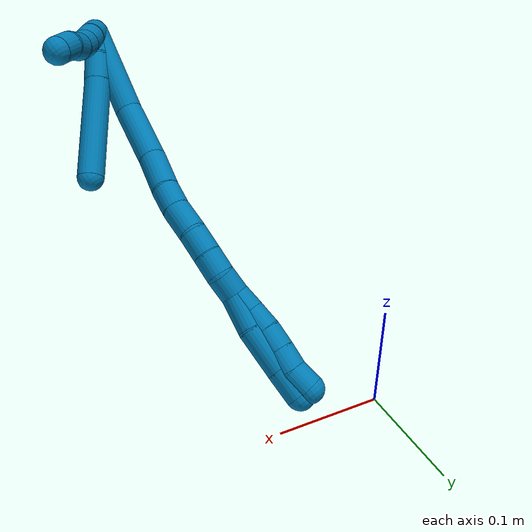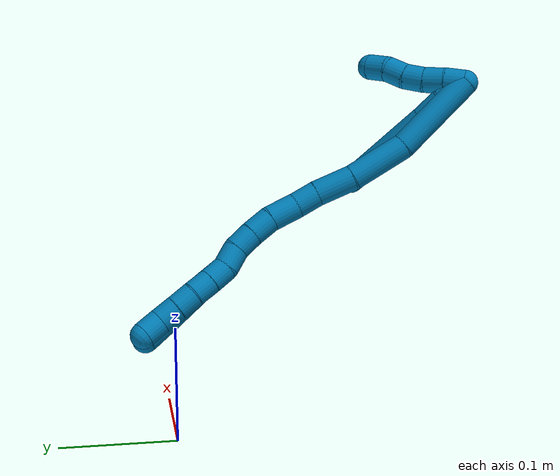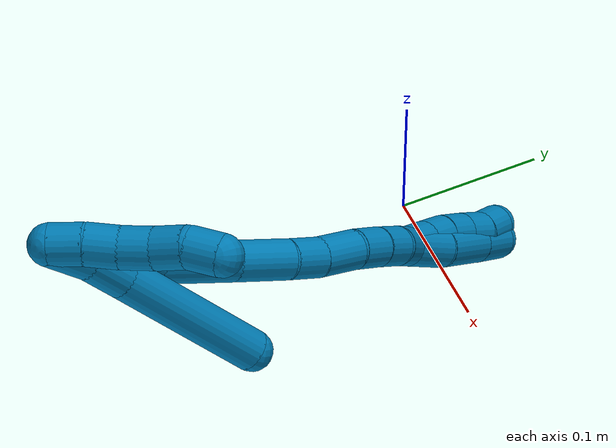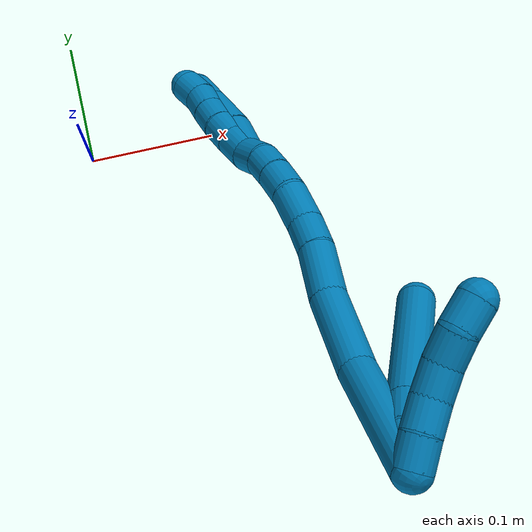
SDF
<sdf version="1.7">
 <world name="default">
  <model name="9">
   <static>0</static>
   <link name="9">
    <collision name="collision-cylinder-e_1_2_8">
     <pose>0.004876 0.005033 -0.011996 -2.74436 0.358637 -1.46631</pose>
     <geometry><cylinder><radius>0.0125</radius><length>0.027786</length></cylinder></geometry>
     <surface>
      <friction><ode><mu>1.16</mu><mu2>1.16</mu2><slip1>0</slip1><slip2>0</slip2></ode></friction>
      <contact><ode><kp>1e+06</kp><kd>1</kd><max_vel>0</max_vel><min_depth>0.001</min_depth></ode></contact>
     </surface>
    </collision>
    <visual name="visual-cylinder-e_1_2_8">
     <pose>0.004876 0.005033 -0.011996 -2.74436 0.358637 -1.46631</pose>
     <geometry><cylinder><radius>0.0125</radius><length>0.027786</length></cylinder></geometry>
     <material><ambient>0 0.490196 0.709804 1</ambient></material>
    </visual>
    <collision name="collision-cylinder-e_2_8_9">
     <pose>0.015903 0.01406 -0.034401 -2.77515 0.504121 -1.89419</pose>
     <geometry><cylinder><radius>0.0125</radius><length>0.025466</length></cylinder></geometry>
     <surface>
      <friction><ode><mu>1.16</mu><mu2>1.16</mu2><slip1>0</slip1><slip2>0</slip2></ode></friction>
      <contact><ode><kp>1e+06</kp><kd>1</kd><max_vel>0</max_vel><min_depth>0.001</min_depth></ode></contact>
     </surface>
    </collision>
    <visual name="visual-cylinder-e_2_8_9">
     <pose>0.015903 0.01406 -0.034401 -2.77515 0.504121 -1.89419</pose>
     <geometry><cylinder><radius>0.0125</radius><length>0.025466</length></cylinder></geometry>
     <material><ambient>0 0.490196 0.709804 1</ambient></material>
    </visual>
    <collision name="collision-cylinder-e_3_9_6">
     <pose>0.046451 0.035827 -0.082612 -2.70211 0.528613 -1.76168</pose>
     <geometry><cylinder><radius>0.0125</radius><length>0.096748</length></cylinder></geometry>
     <surface>
      <friction><ode><mu>1.16</mu><mu2>1.16</mu2><slip1>0</slip1><slip2>0</slip2></ode></friction>
      <contact><ode><kp>1e+06</kp><kd>1</kd><max_vel>0</max_vel><min_depth>0.001</min_depth></ode></contact>
     </surface>
    </collision>
    <visual name="visual-cylinder-e_3_9_6">
     <pose>0.046451 0.035827 -0.082612 -2.70211 0.528613 -1.76168</pose>
     <geometry><cylinder><radius>0.0125</radius><length>0.096748</length></cylinder></geometry>
     <material><ambient>0 0.490196 0.709804 1</ambient></material>
    </visual>
    <collision name="collision-cylinder-e_1_2_10">
     <pose>0.000433 0.009156 -0.003997 -1.98235 0.043355 -0.066215</pose>
     <geometry><cylinder><radius>0.0125</radius><length>0.02</length></cylinder></geometry>
     <surface>
      <friction><ode><mu>1.16</mu><mu2>1.16</mu2><slip1>0</slip1><slip2>0</slip2></ode></friction>
      <contact><ode><kp>1e+06</kp><kd>1</kd><max_vel>0</max_vel><min_depth>0.001</min_depth></ode></contact>
     </surface>
    </collision>
    <visual name="visual-cylinder-e_1_2_10">
     <pose>0.000433 0.009156 -0.003997 -1.98235 0.043355 -0.066215</pose>
     <geometry><cylinder><radius>0.0125</radius><length>0.02</length></cylinder></geometry>
     <material><ambient>0 0.490196 0.709804 1</ambient></material>
    </visual>
    <collision name="collision-cylinder-e_2_10_11">
     <pose>0.002413 0.02716 -0.012391 -2.03209 0.155288 -0.249799</pose>
     <geometry><cylinder><radius>0.0125</radius><length>0.02</length></cylinder></geometry>
     <surface>
      <friction><ode><mu>1.16</mu><mu2>1.16</mu2><slip1>0</slip1><slip2>0</slip2></ode></friction>
      <contact><ode><kp>1e+06</kp><kd>1</kd><max_vel>0</max_vel><min_depth>0.001</min_depth></ode></contact>
     </surface>
    </collision>
    <visual name="visual-cylinder-e_2_10_11">
     <pose>0.002413 0.02716 -0.012391 -2.03209 0.155288 -0.249799</pose>
     <geometry><cylinder><radius>0.0125</radius><length>0.02</length></cylinder></geometry>
     <material><ambient>0 0.490196 0.709804 1</ambient></material>
    </visual>
    <collision name="collision-cylinder-e_3_11_12">
     <pose>0.00475 0.045468 -0.019929 -1.89137 0.079035 -0.109467</pose>
     <geometry><cylinder><radius>0.0125</radius><length>0.02</length></cylinder></geometry>
     <surface>
      <friction><ode><mu>1.16</mu><mu2>1.16</mu2><slip1>0</slip1><slip2>0</slip2></ode></friction>
      <contact><ode><kp>1e+06</kp><kd>1</kd><max_vel>0</max_vel><min_depth>0.001</min_depth></ode></contact>
     </surface>
    </collision>
    <visual name="visual-cylinder-e_3_11_12">
     <pose>0.00475 0.045468 -0.019929 -1.89137 0.079035 -0.109467</pose>
     <geometry><cylinder><radius>0.0125</radius><length>0.02</length></cylinder></geometry>
     <material><ambient>0 0.490196 0.709804 1</ambient></material>
    </visual>
    <collision name="collision-cylinder-e_4_12_13">
     <pose>0.005598 0.064858 -0.024258 -1.68979 0.005927 -0.006678</pose>
     <geometry><cylinder><radius>0.0125</radius><length>0.02</length></cylinder></geometry>
     <surface>
      <friction><ode><mu>1.16</mu><mu2>1.16</mu2><slip1>0</slip1><slip2>0</slip2></ode></friction>
      <contact><ode><kp>1e+06</kp><kd>1</kd><max_vel>0</max_vel><min_depth>0.001</min_depth></ode></contact>
     </surface>
    </collision>
    <visual name="visual-cylinder-e_4_12_13">
     <pose>0.005598 0.064858 -0.024258 -1.68979 0.005927 -0.006678</pose>
     <geometry><cylinder><radius>0.0125</radius><length>0.02</length></cylinder></geometry>
     <material><ambient>0 0.490196 0.709804 1</ambient></material>
    </visual>
    <collision name="collision-cylinder-e_5_13_5">
     <pose>0.008459 0.084113 -0.02772 -1.81002 0.283923 -0.36</pose>
     <geometry><cylinder><radius>0.0125</radius><length>0.02</length></cylinder></geometry>
     <surface>
      <friction><ode><mu>1.16</mu><mu2>1.16</mu2><slip1>0</slip1><slip2>0</slip2></ode></friction>
      <contact><ode><kp>1e+06</kp><kd>1</kd><max_vel>0</max_vel><min_depth>0.001</min_depth></ode></contact>
     </surface>
    </collision>
    <visual name="visual-cylinder-e_5_13_5">
     <pose>0.008459 0.084113 -0.02772 -1.81002 0.283923 -0.36</pose>
     <geometry><cylinder><radius>0.0125</radius><length>0.02</length></cylinder></geometry>
     <material><ambient>0 0.490196 0.709804 1</ambient></material>
    </visual>
    <collision name="collision-cylinder-e_1_2_14">
     <pose>0.008056 0.006408 -0.042284 -2.9912 0.1862 -1.78374</pose>
     <geometry><cylinder><radius>0.0125</radius><length>0.087037</length></cylinder></geometry>
     <surface>
      <friction><ode><mu>1.16</mu><mu2>1.16</mu2><slip1>0</slip1><slip2>0</slip2></ode></friction>
      <contact><ode><kp>1e+06</kp><kd>1</kd><max_vel>0</max_vel><min_depth>0.001</min_depth></ode></contact>
     </surface>
    </collision>
    <visual name="visual-cylinder-e_1_2_14">
     <pose>0.008056 0.006408 -0.042284 -2.9912 0.1862 -1.78374</pose>
     <geometry><cylinder><radius>0.0125</radius><length>0.087037</length></cylinder></geometry>
     <material><ambient>0 0.490196 0.709804 1</ambient></material>
    </visual>
    <collision name="collision-cylinder-e_2_14_15">
     <pose>0.017753 0.022764 -0.111822 -2.79161 0.056484 -0.316886</pose>
     <geometry><cylinder><radius>0.0125</radius><length>0.058121</length></cylinder></geometry>
     <surface>
      <friction><ode><mu>1.16</mu><mu2>1.16</mu2><slip1>0</slip1><slip2>0</slip2></ode></friction>
      <contact><ode><kp>1e+06</kp><kd>1</kd><max_vel>0</max_vel><min_depth>0.001</min_depth></ode></contact>
     </surface>
    </collision>
    <visual name="visual-cylinder-e_2_14_15">
     <pose>0.017753 0.022764 -0.111822 -2.79161 0.056484 -0.316886</pose>
     <geometry><cylinder><radius>0.0125</radius><length>0.058121</length></cylinder></geometry>
     <material><ambient>0 0.490196 0.709804 1</ambient></material>
    </visual>
    <collision name="collision-cylinder-e_3_15_16">
     <pose>0.020249 0.041828 -0.155689 -2.63969 0.045071 -0.175391</pose>
     <geometry><cylinder><radius>0.0125</radius><length>0.037936</length></cylinder></geometry>
     <surface>
      <friction><ode><mu>1.16</mu><mu2>1.16</mu2><slip1>0</slip1><slip2>0</slip2></ode></friction>
      <contact><ode><kp>1e+06</kp><kd>1</kd><max_vel>0</max_vel><min_depth>0.001</min_depth></ode></contact>
     </surface>
    </collision>
    <visual name="visual-cylinder-e_3_15_16">
     <pose>0.020249 0.041828 -0.155689 -2.63969 0.045071 -0.175391</pose>
     <geometry><cylinder><radius>0.0125</radius><length>0.037936</length></cylinder></geometry>
     <material><ambient>0 0.490196 0.709804 1</ambient></material>
    </visual>
    <collision name="collision-cylinder-e_4_16_17">
     <pose>0.021356 0.055029 -0.183085 -2.77954 0.021944 -0.119755</pose>
     <geometry><cylinder><radius>0.0125</radius><length>0.02307</length></cylinder></geometry>
     <surface>
      <friction><ode><mu>1.16</mu><mu2>1.16</mu2><slip1>0</slip1><slip2>0</slip2></ode></friction>
      <contact><ode><kp>1e+06</kp><kd>1</kd><max_vel>0</max_vel><min_depth>0.001</min_depth></ode></contact>
     </surface>
    </collision>
    <visual name="visual-cylinder-e_4_16_17">
     <pose>0.021356 0.055029 -0.183085 -2.77954 0.021944 -0.119755</pose>
     <geometry><cylinder><radius>0.0125</radius><length>0.02307</length></cylinder></geometry>
     <material><ambient>0 0.490196 0.709804 1</ambient></material>
    </visual>
    <collision name="collision-cylinder-e_5_17_18">
     <pose>0.020238 0.064121 -0.207212 -2.78253 -0.095943 0.517213</pose>
     <geometry><cylinder><radius>0.0125</radius><length>0.028633</length></cylinder></geometry>
     <surface>
      <friction><ode><mu>1.16</mu><mu2>1.16</mu2><slip1>0</slip1><slip2>0</slip2></ode></friction>
      <contact><ode><kp>1e+06</kp><kd>1</kd><max_vel>0</max_vel><min_depth>0.001</min_depth></ode></contact>
     </surface>
    </collision>
    <visual name="visual-cylinder-e_5_17_18">
     <pose>0.020238 0.064121 -0.207212 -2.78253 -0.095943 0.517213</pose>
     <geometry><cylinder><radius>0.0125</radius><length>0.028633</length></cylinder></geometry>
     <material><ambient>0 0.490196 0.709804 1</ambient></material>
    </visual>
    <collision name="collision-cylinder-e_6_18_19">
     <pose>0.01887 0.071135 -0.231826 -2.9655 0.000285 -0.003224</pose>
     <geometry><cylinder><radius>0.0125</radius><length>0.022899</length></cylinder></geometry>
     <surface>
      <friction><ode><mu>1.16</mu><mu2>1.16</mu2><slip1>0</slip1><slip2>0</slip2></ode></friction>
      <contact><ode><kp>1e+06</kp><kd>1</kd><max_vel>0</max_vel><min_depth>0.001</min_depth></ode></contact>
     </surface>
    </collision>
    <visual name="visual-cylinder-e_6_18_19">
     <pose>0.01887 0.071135 -0.231826 -2.9655 0.000285 -0.003224</pose>
     <geometry><cylinder><radius>0.0125</radius><length>0.022899</length></cylinder></geometry>
     <material><ambient>0 0.490196 0.709804 1</ambient></material>
    </visual>
    <collision name="collision-cylinder-e_7_19_20">
     <pose>0.019236 0.074186 -0.253576 -3.04216 0.034464 -0.666816</pose>
     <geometry><cylinder><radius>0.0125</radius><length>0.021071</length></cylinder></geometry>
     <surface>
      <friction><ode><mu>1.16</mu><mu2>1.16</mu2><slip1>0</slip1><slip2>0</slip2></ode></friction>
      <contact><ode><kp>1e+06</kp><kd>1</kd><max_vel>0</max_vel><min_depth>0.001</min_depth></ode></contact>
     </surface>
    </collision>
    <visual name="visual-cylinder-e_7_19_20">
     <pose>0.019236 0.074186 -0.253576 -3.04216 0.034464 -0.666816</pose>
     <geometry><cylinder><radius>0.0125</radius><length>0.021071</length></cylinder></geometry>
     <material><ambient>0 0.490196 0.709804 1</ambient></material>
    </visual>
    <collision name="collision-cylinder-e_8_20_1">
     <pose>0.020289 0.073187 -0.274448 2.94742 0.065012 0.644483</pose>
     <geometry><cylinder><radius>0.0125</radius><length>0.021233</length></cylinder></geometry>
     <surface>
      <friction><ode><mu>1.16</mu><mu2>1.16</mu2><slip1>0</slip1><slip2>0</slip2></ode></friction>
      <contact><ode><kp>1e+06</kp><kd>1</kd><max_vel>0</max_vel><min_depth>0.001</min_depth></ode></contact>
     </surface>
    </collision>
    <visual name="visual-cylinder-e_8_20_1">
     <pose>0.020289 0.073187 -0.274448 2.94742 0.065012 0.644483</pose>
     <geometry><cylinder><radius>0.0125</radius><length>0.021233</length></cylinder></geometry>
     <material><ambient>0 0.490196 0.709804 1</ambient></material>
    </visual>
    <collision name="collision-cylinder-e_1_1_21">
     <pose>0.019751 0.072077 -0.294724 -3.04736 -0.123073 1.83519</pose>
     <geometry><cylinder><radius>0.0125</radius><length>0.02</length></cylinder></geometry>
     <surface>
      <friction><ode><mu>1.16</mu><mu2>1.16</mu2><slip1>0</slip1><slip2>0</slip2></ode></friction>
      <contact><ode><kp>1e+06</kp><kd>1</kd><max_vel>0</max_vel><min_depth>0.001</min_depth></ode></contact>
     </surface>
    </collision>
    <visual name="visual-cylinder-e_1_1_21">
     <pose>0.019751 0.072077 -0.294724 -3.04736 -0.123073 1.83519</pose>
     <geometry><cylinder><radius>0.0125</radius><length>0.02</length></cylinder></geometry>
     <material><ambient>0 0.490196 0.709804 1</ambient></material>
    </visual>
    <collision name="collision-cylinder-e_2_21_22">
     <pose>0.017298 0.074377 -0.314434 -3.00348 -0.12283 1.45345</pose>
     <geometry><cylinder><radius>0.0125</radius><length>0.02</length></cylinder></geometry>
     <surface>
      <friction><ode><mu>1.16</mu><mu2>1.16</mu2><slip1>0</slip1><slip2>0</slip2></ode></friction>
      <contact><ode><kp>1e+06</kp><kd>1</kd><max_vel>0</max_vel><min_depth>0.001</min_depth></ode></contact>
     </surface>
    </collision>
    <visual name="visual-cylinder-e_2_21_22">
     <pose>0.017298 0.074377 -0.314434 -3.00348 -0.12283 1.45345</pose>
     <geometry><cylinder><radius>0.0125</radius><length>0.02</length></cylinder></geometry>
     <material><ambient>0 0.490196 0.709804 1</ambient></material>
    </visual>
    <collision name="collision-cylinder-e_3_22_23">
     <pose>0.015993 0.077399 -0.334126 -2.9752 -0.008012 0.096003</pose>
     <geometry><cylinder><radius>0.0125</radius><length>0.02</length></cylinder></geometry>
     <surface>
      <friction><ode><mu>1.16</mu><mu2>1.16</mu2><slip1>0</slip1><slip2>0</slip2></ode></friction>
      <contact><ode><kp>1e+06</kp><kd>1</kd><max_vel>0</max_vel><min_depth>0.001</min_depth></ode></contact>
     </surface>
    </collision>
    <visual name="visual-cylinder-e_3_22_23">
     <pose>0.015993 0.077399 -0.334126 -2.9752 -0.008012 0.096003</pose>
     <geometry><cylinder><radius>0.0125</radius><length>0.02</length></cylinder></geometry>
     <material><ambient>0 0.490196 0.709804 1</ambient></material>
    </visual>
    <collision name="collision-cylinder-e_4_23_24">
     <pose>0.016136 0.081052 -0.353784 -2.94053 0.022391 -0.221078</pose>
     <geometry><cylinder><radius>0.0125</radius><length>0.02</length></cylinder></geometry>
     <surface>
      <friction><ode><mu>1.16</mu><mu2>1.16</mu2><slip1>0</slip1><slip2>0</slip2></ode></friction>
      <contact><ode><kp>1e+06</kp><kd>1</kd><max_vel>0</max_vel><min_depth>0.001</min_depth></ode></contact>
     </surface>
    </collision>
    <visual name="visual-cylinder-e_4_23_24">
     <pose>0.016136 0.081052 -0.353784 -2.94053 0.022391 -0.221078</pose>
     <geometry><cylinder><radius>0.0125</radius><length>0.02</length></cylinder></geometry>
     <material><ambient>0 0.490196 0.709804 1</ambient></material>
    </visual>
    <collision name="collision-cylinder-e_5_24_4">
     <pose>0.01461 0.083762 -0.373399 -3.06913 -0.175904 2.36157</pose>
     <geometry><cylinder><radius>0.0125</radius><length>0.02</length></cylinder></geometry>
     <surface>
      <friction><ode><mu>1.16</mu><mu2>1.16</mu2><slip1>0</slip1><slip2>0</slip2></ode></friction>
      <contact><ode><kp>1e+06</kp><kd>1</kd><max_vel>0</max_vel><min_depth>0.001</min_depth></ode></contact>
     </surface>
    </collision>
    <visual name="visual-cylinder-e_5_24_4">
     <pose>0.01461 0.083762 -0.373399 -3.06913 -0.175904 2.36157</pose>
     <geometry><cylinder><radius>0.0125</radius><length>0.02</length></cylinder></geometry>
     <material><ambient>0 0.490196 0.709804 1</ambient></material>
    </visual>
    <collision name="collision-cylinder-e_1_1_25">
     <pose>0.022639 0.074777 -0.30073 -2.91673 0.101574 -0.846019</pose>
     <geometry><cylinder><radius>0.0125</radius><length>0.032763</length></cylinder></geometry>
     <surface>
      <friction><ode><mu>1.16</mu><mu2>1.16</mu2><slip1>0</slip1><slip2>0</slip2></ode></friction>
      <contact><ode><kp>1e+06</kp><kd>1</kd><max_vel>0</max_vel><min_depth>0.001</min_depth></ode></contact>
     </surface>
    </collision>
    <visual name="visual-cylinder-e_1_1_25">
     <pose>0.022639 0.074777 -0.30073 -2.91673 0.101574 -0.846019</pose>
     <geometry><cylinder><radius>0.0125</radius><length>0.032763</length></cylinder></geometry>
     <material><ambient>0 0.490196 0.709804 1</ambient></material>
    </visual>
    <collision name="collision-cylinder-e_2_25_26">
     <pose>0.024082 0.080267 -0.336765 -3.04973 -0.01081 0.234124</pose>
     <geometry><cylinder><radius>0.0125</radius><length>0.040469</length></cylinder></geometry>
     <surface>
      <friction><ode><mu>1.16</mu><mu2>1.16</mu2><slip1>0</slip1><slip2>0</slip2></ode></friction>
      <contact><ode><kp>1e+06</kp><kd>1</kd><max_vel>0</max_vel><min_depth>0.001</min_depth></ode></contact>
     </surface>
    </collision>
    <visual name="visual-cylinder-e_2_25_26">
     <pose>0.024082 0.080267 -0.336765 -3.04973 -0.01081 0.234124</pose>
     <geometry><cylinder><radius>0.0125</radius><length>0.040469</length></cylinder></geometry>
     <material><ambient>0 0.490196 0.709804 1</ambient></material>
    </visual>
    <collision name="collision-cylinder-e_3_26_3">
     <pose>0.023441 0.083481 -0.370221 -3.03987 -0.031546 0.600992</pose>
     <geometry><cylinder><radius>0.0125</radius><length>0.026768</length></cylinder></geometry>
     <surface>
      <friction><ode><mu>1.16</mu><mu2>1.16</mu2><slip1>0</slip1><slip2>0</slip2></ode></friction>
      <contact><ode><kp>1e+06</kp><kd>1</kd><max_vel>0</max_vel><min_depth>0.001</min_depth></ode></contact>
     </surface>
    </collision>
    <visual name="visual-cylinder-e_3_26_3">
     <pose>0.023441 0.083481 -0.370221 -3.03987 -0.031546 0.600992</pose>
     <geometry><cylinder><radius>0.0125</radius><length>0.026768</length></cylinder></geometry>
     <material><ambient>0 0.490196 0.709804 1</ambient></material>
    </visual>
    <collision name="collision-sphere-3">
     <pose>0.023019 0.084839 -0.383529 0 -0 0</pose>
     <geometry><sphere><radius>0.0125</radius></sphere></geometry>
     <surface>
      <friction><ode><mu>1.16</mu><mu2>1.16</mu2><slip1>0</slip1><slip2>0</slip2></ode></friction>
      <contact><ode><kp>1e+06</kp><kd>1</kd><max_vel>0</max_vel><min_depth>0.001</min_depth></ode></contact>
     </surface>
    </collision>
    <visual name="visual-sphere-3">
     <pose>0.023019 0.084839 -0.383529 0 -0 0</pose>
     <geometry><sphere><radius>0.0125</radius></sphere></geometry>
     <material><ambient>0 0.490196 0.709804 1</ambient></material>
    </visual>
    <collision name="collision-sphere-26">
     <pose>0.023863 0.082123 -0.356913 0 -0 0</pose>
     <geometry><sphere><radius>0.0125</radius></sphere></geometry>
     <surface>
      <friction><ode><mu>1.16</mu><mu2>1.16</mu2><slip1>0</slip1><slip2>0</slip2></ode></friction>
      <contact><ode><kp>1e+06</kp><kd>1</kd><max_vel>0</max_vel><min_depth>0.001</min_depth></ode></contact>
     </surface>
    </collision>
    <visual name="visual-sphere-26">
     <pose>0.023863 0.082123 -0.356913 0 -0 0</pose>
     <geometry><sphere><radius>0.0125</radius></sphere></geometry>
     <material><ambient>0 0.490196 0.709804 1</ambient></material>
    </visual>
    <collision name="collision-sphere-25">
     <pose>0.024301 0.078411 -0.316617 0 -0 0</pose>
     <geometry><sphere><radius>0.0125</radius></sphere></geometry>
     <surface>
      <friction><ode><mu>1.16</mu><mu2>1.16</mu2><slip1>0</slip1><slip2>0</slip2></ode></friction>
      <contact><ode><kp>1e+06</kp><kd>1</kd><max_vel>0</max_vel><min_depth>0.001</min_depth></ode></contact>
     </surface>
    </collision>
    <visual name="visual-sphere-25">
     <pose>0.024301 0.078411 -0.316617 0 -0 0</pose>
     <geometry><sphere><radius>0.0125</radius></sphere></geometry>
     <material><ambient>0 0.490196 0.709804 1</ambient></material>
    </visual>
    <collision name="collision-sphere-4">
     <pose>0.01286 0.084474 -0.383219 0 -0 0</pose>
     <geometry><sphere><radius>0.0125</radius></sphere></geometry>
     <surface>
      <friction><ode><mu>1.16</mu><mu2>1.16</mu2><slip1>0</slip1><slip2>0</slip2></ode></friction>
      <contact><ode><kp>1e+06</kp><kd>1</kd><max_vel>0</max_vel><min_depth>0.001</min_depth></ode></contact>
     </surface>
    </collision>
    <visual name="visual-sphere-4">
     <pose>0.01286 0.084474 -0.383219 0 -0 0</pose>
     <geometry><sphere><radius>0.0125</radius></sphere></geometry>
     <material><ambient>0 0.490196 0.709804 1</ambient></material>
    </visual>
    <collision name="collision-sphere-24">
     <pose>0.01636 0.083049 -0.36358 0 -0 0</pose>
     <geometry><sphere><radius>0.0125</radius></sphere></geometry>
     <surface>
      <friction><ode><mu>1.16</mu><mu2>1.16</mu2><slip1>0</slip1><slip2>0</slip2></ode></friction>
      <contact><ode><kp>1e+06</kp><kd>1</kd><max_vel>0</max_vel><min_depth>0.001</min_depth></ode></contact>
     </surface>
    </collision>
    <visual name="visual-sphere-24">
     <pose>0.01636 0.083049 -0.36358 0 -0 0</pose>
     <geometry><sphere><radius>0.0125</radius></sphere></geometry>
     <material><ambient>0 0.490196 0.709804 1</ambient></material>
    </visual>
    <collision name="collision-sphere-23">
     <pose>0.015912 0.079056 -0.343987 0 -0 0</pose>
     <geometry><sphere><radius>0.0125</radius></sphere></geometry>
     <surface>
      <friction><ode><mu>1.16</mu><mu2>1.16</mu2><slip1>0</slip1><slip2>0</slip2></ode></friction>
      <contact><ode><kp>1e+06</kp><kd>1</kd><max_vel>0</max_vel><min_depth>0.001</min_depth></ode></contact>
     </surface>
    </collision>
    <visual name="visual-sphere-23">
     <pose>0.015912 0.079056 -0.343987 0 -0 0</pose>
     <geometry><sphere><radius>0.0125</radius></sphere></geometry>
     <material><ambient>0 0.490196 0.709804 1</ambient></material>
    </visual>
    <collision name="collision-sphere-22">
     <pose>0.016073 0.075743 -0.324264 0 -0 0</pose>
     <geometry><sphere><radius>0.0125</radius></sphere></geometry>
     <surface>
      <friction><ode><mu>1.16</mu><mu2>1.16</mu2><slip1>0</slip1><slip2>0</slip2></ode></friction>
      <contact><ode><kp>1e+06</kp><kd>1</kd><max_vel>0</max_vel><min_depth>0.001</min_depth></ode></contact>
     </surface>
    </collision>
    <visual name="visual-sphere-22">
     <pose>0.016073 0.075743 -0.324264 0 -0 0</pose>
     <geometry><sphere><radius>0.0125</radius></sphere></geometry>
     <material><ambient>0 0.490196 0.709804 1</ambient></material>
    </visual>
    <collision name="collision-sphere-21">
     <pose>0.018523 0.07301 -0.304604 0 -0 0</pose>
     <geometry><sphere><radius>0.0125</radius></sphere></geometry>
     <surface>
      <friction><ode><mu>1.16</mu><mu2>1.16</mu2><slip1>0</slip1><slip2>0</slip2></ode></friction>
      <contact><ode><kp>1e+06</kp><kd>1</kd><max_vel>0</max_vel><min_depth>0.001</min_depth></ode></contact>
     </surface>
    </collision>
    <visual name="visual-sphere-21">
     <pose>0.018523 0.07301 -0.304604 0 -0 0</pose>
     <geometry><sphere><radius>0.0125</radius></sphere></geometry>
     <material><ambient>0 0.490196 0.709804 1</ambient></material>
    </visual>
    <collision name="collision-sphere-1">
     <pose>0.020978 0.071143 -0.284843 0 -0 0</pose>
     <geometry><sphere><radius>0.0125</radius></sphere></geometry>
     <surface>
      <friction><ode><mu>1.16</mu><mu2>1.16</mu2><slip1>0</slip1><slip2>0</slip2></ode></friction>
      <contact><ode><kp>1e+06</kp><kd>1</kd><max_vel>0</max_vel><min_depth>0.001</min_depth></ode></contact>
     </surface>
    </collision>
    <visual name="visual-sphere-1">
     <pose>0.020978 0.071143 -0.284843 0 -0 0</pose>
     <geometry><sphere><radius>0.0125</radius></sphere></geometry>
     <material><ambient>0 0.490196 0.709804 1</ambient></material>
    </visual>
    <collision name="collision-sphere-11">
     <pose>0.00396 0.036007 -0.016788 0 -0 0</pose>
     <geometry><sphere><radius>0.0125</radius></sphere></geometry>
     <surface>
      <friction><ode><mu>1.16</mu><mu2>1.16</mu2><slip1>0</slip1><slip2>0</slip2></ode></friction>
      <contact><ode><kp>1e+06</kp><kd>1</kd><max_vel>0</max_vel><min_depth>0.001</min_depth></ode></contact>
     </surface>
    </collision>
    <visual name="visual-sphere-11">
     <pose>0.00396 0.036007 -0.016788 0 -0 0</pose>
     <geometry><sphere><radius>0.0125</radius></sphere></geometry>
     <material><ambient>0 0.490196 0.709804 1</ambient></material>
    </visual>
    <collision name="collision-sphere-10">
     <pose>0.000867 0.018313 -0.007993 0 -0 0</pose>
     <geometry><sphere><radius>0.0125</radius></sphere></geometry>
     <surface>
      <friction><ode><mu>1.16</mu><mu2>1.16</mu2><slip1>0</slip1><slip2>0</slip2></ode></friction>
      <contact><ode><kp>1e+06</kp><kd>1</kd><max_vel>0</max_vel><min_depth>0.001</min_depth></ode></contact>
     </surface>
    </collision>
    <visual name="visual-sphere-10">
     <pose>0.000867 0.018313 -0.007993 0 -0 0</pose>
     <geometry><sphere><radius>0.0125</radius></sphere></geometry>
     <material><ambient>0 0.490196 0.709804 1</ambient></material>
    </visual>
    <collision name="collision-sphere-6">
     <pose>0.070847 0.0536 -0.120414 0 -0 0</pose>
     <geometry><sphere><radius>0.0125</radius></sphere></geometry>
     <surface>
      <friction><ode><mu>1.16</mu><mu2>1.16</mu2><slip1>0</slip1><slip2>0</slip2></ode></friction>
      <contact><ode><kp>1e+06</kp><kd>1</kd><max_vel>0</max_vel><min_depth>0.001</min_depth></ode></contact>
     </surface>
    </collision>
    <visual name="visual-sphere-6">
     <pose>0.070847 0.0536 -0.120414 0 -0 0</pose>
     <geometry><sphere><radius>0.0125</radius></sphere></geometry>
     <material><ambient>0 0.490196 0.709804 1</ambient></material>
    </visual>
    <collision name="collision-sphere-9">
     <pose>0.022054 0.018055 -0.04481 0 -0 0</pose>
     <geometry><sphere><radius>0.0125</radius></sphere></geometry>
     <surface>
      <friction><ode><mu>1.16</mu><mu2>1.16</mu2><slip1>0</slip1><slip2>0</slip2></ode></friction>
      <contact><ode><kp>1e+06</kp><kd>1</kd><max_vel>0</max_vel><min_depth>0.001</min_depth></ode></contact>
     </surface>
    </collision>
    <visual name="visual-sphere-9">
     <pose>0.022054 0.018055 -0.04481 0 -0 0</pose>
     <geometry><sphere><radius>0.0125</radius></sphere></geometry>
     <material><ambient>0 0.490196 0.709804 1</ambient></material>
    </visual>
    <collision name="collision-sphere-2">
     <geometry><sphere><radius>0.0125</radius></sphere></geometry>
     <surface>
      <friction><ode><mu>1.16</mu><mu2>1.16</mu2><slip1>0</slip1><slip2>0</slip2></ode></friction>
      <contact><ode><kp>1e+06</kp><kd>1</kd><max_vel>0</max_vel><min_depth>0.001</min_depth></ode></contact>
     </surface>
    </collision>
    <visual name="visual-sphere-2">
     <geometry><sphere><radius>0.0125</radius></sphere></geometry>
     <material><ambient>0 0.490196 0.709804 1</ambient></material>
    </visual>
    <collision name="collision-sphere-19">
     <pose>0.018873 0.07314 -0.243099 0 -0 0</pose>
     <geometry><sphere><radius>0.0125</radius></sphere></geometry>
     <surface>
      <friction><ode><mu>1.16</mu><mu2>1.16</mu2><slip1>0</slip1><slip2>0</slip2></ode></friction>
      <contact><ode><kp>1e+06</kp><kd>1</kd><max_vel>0</max_vel><min_depth>0.001</min_depth></ode></contact>
     </surface>
    </collision>
    <visual name="visual-sphere-19">
     <pose>0.018873 0.07314 -0.243099 0 -0 0</pose>
     <geometry><sphere><radius>0.0125</radius></sphere></geometry>
     <material><ambient>0 0.490196 0.709804 1</ambient></material>
    </visual>
    <collision name="collision-sphere-8">
     <pose>0.009753 0.010065 -0.023992 0 -0 0</pose>
     <geometry><sphere><radius>0.0125</radius></sphere></geometry>
     <surface>
      <friction><ode><mu>1.16</mu><mu2>1.16</mu2><slip1>0</slip1><slip2>0</slip2></ode></friction>
      <contact><ode><kp>1e+06</kp><kd>1</kd><max_vel>0</max_vel><min_depth>0.001</min_depth></ode></contact>
     </surface>
    </collision>
    <visual name="visual-sphere-8">
     <pose>0.009753 0.010065 -0.023992 0 -0 0</pose>
     <geometry><sphere><radius>0.0125</radius></sphere></geometry>
     <material><ambient>0 0.490196 0.709804 1</ambient></material>
    </visual>
    <collision name="collision-sphere-12">
     <pose>0.005539 0.054929 -0.023071 0 -0 0</pose>
     <geometry><sphere><radius>0.0125</radius></sphere></geometry>
     <surface>
      <friction><ode><mu>1.16</mu><mu2>1.16</mu2><slip1>0</slip1><slip2>0</slip2></ode></friction>
      <contact><ode><kp>1e+06</kp><kd>1</kd><max_vel>0</max_vel><min_depth>0.001</min_depth></ode></contact>
     </surface>
    </collision>
    <visual name="visual-sphere-12">
     <pose>0.005539 0.054929 -0.023071 0 -0 0</pose>
     <geometry><sphere><radius>0.0125</radius></sphere></geometry>
     <material><ambient>0 0.490196 0.709804 1</ambient></material>
    </visual>
    <collision name="collision-sphere-13">
     <pose>0.005658 0.074787 -0.025445 0 -0 0</pose>
     <geometry><sphere><radius>0.0125</radius></sphere></geometry>
     <surface>
      <friction><ode><mu>1.16</mu><mu2>1.16</mu2><slip1>0</slip1><slip2>0</slip2></ode></friction>
      <contact><ode><kp>1e+06</kp><kd>1</kd><max_vel>0</max_vel><min_depth>0.001</min_depth></ode></contact>
     </surface>
    </collision>
    <visual name="visual-sphere-13">
     <pose>0.005658 0.074787 -0.025445 0 -0 0</pose>
     <geometry><sphere><radius>0.0125</radius></sphere></geometry>
     <material><ambient>0 0.490196 0.709804 1</ambient></material>
    </visual>
    <collision name="collision-sphere-5">
     <pose>0.01126 0.093439 -0.029994 0 -0 0</pose>
     <geometry><sphere><radius>0.0125</radius></sphere></geometry>
     <surface>
      <friction><ode><mu>1.16</mu><mu2>1.16</mu2><slip1>0</slip1><slip2>0</slip2></ode></friction>
      <contact><ode><kp>1e+06</kp><kd>1</kd><max_vel>0</max_vel><min_depth>0.001</min_depth></ode></contact>
     </surface>
    </collision>
    <visual name="visual-sphere-5">
     <pose>0.01126 0.093439 -0.029994 0 -0 0</pose>
     <geometry><sphere><radius>0.0125</radius></sphere></geometry>
     <material><ambient>0 0.490196 0.709804 1</ambient></material>
    </visual>
    <collision name="collision-sphere-14">
     <pose>0.016113 0.012815 -0.084567 0 -0 0</pose>
     <geometry><sphere><radius>0.0125</radius></sphere></geometry>
     <surface>
      <friction><ode><mu>1.16</mu><mu2>1.16</mu2><slip1>0</slip1><slip2>0</slip2></ode></friction>
      <contact><ode><kp>1e+06</kp><kd>1</kd><max_vel>0</max_vel><min_depth>0.001</min_depth></ode></contact>
     </surface>
    </collision>
    <visual name="visual-sphere-14">
     <pose>0.016113 0.012815 -0.084567 0 -0 0</pose>
     <geometry><sphere><radius>0.0125</radius></sphere></geometry>
     <material><ambient>0 0.490196 0.709804 1</ambient></material>
    </visual>
    <collision name="collision-sphere-15">
     <pose>0.019394 0.032712 -0.139077 0 -0 0</pose>
     <geometry><sphere><radius>0.0125</radius></sphere></geometry>
     <surface>
      <friction><ode><mu>1.16</mu><mu2>1.16</mu2><slip1>0</slip1><slip2>0</slip2></ode></friction>
      <contact><ode><kp>1e+06</kp><kd>1</kd><max_vel>0</max_vel><min_depth>0.001</min_depth></ode></contact>
     </surface>
    </collision>
    <visual name="visual-sphere-15">
     <pose>0.019394 0.032712 -0.139077 0 -0 0</pose>
     <geometry><sphere><radius>0.0125</radius></sphere></geometry>
     <material><ambient>0 0.490196 0.709804 1</ambient></material>
    </visual>
    <collision name="collision-sphere-16">
     <pose>0.021103 0.050944 -0.172301 0 -0 0</pose>
     <geometry><sphere><radius>0.0125</radius></sphere></geometry>
     <surface>
      <friction><ode><mu>1.16</mu><mu2>1.16</mu2><slip1>0</slip1><slip2>0</slip2></ode></friction>
      <contact><ode><kp>1e+06</kp><kd>1</kd><max_vel>0</max_vel><min_depth>0.001</min_depth></ode></contact>
     </surface>
    </collision>
    <visual name="visual-sphere-16">
     <pose>0.021103 0.050944 -0.172301 0 -0 0</pose>
     <geometry><sphere><radius>0.0125</radius></sphere></geometry>
     <material><ambient>0 0.490196 0.709804 1</ambient></material>
    </visual>
    <collision name="collision-sphere-17">
     <pose>0.021609 0.059114 -0.19387 0 -0 0</pose>
     <geometry><sphere><radius>0.0125</radius></sphere></geometry>
     <surface>
      <friction><ode><mu>1.16</mu><mu2>1.16</mu2><slip1>0</slip1><slip2>0</slip2></ode></friction>
      <contact><ode><kp>1e+06</kp><kd>1</kd><max_vel>0</max_vel><min_depth>0.001</min_depth></ode></contact>
     </surface>
    </collision>
    <visual name="visual-sphere-17">
     <pose>0.021609 0.059114 -0.19387 0 -0 0</pose>
     <geometry><sphere><radius>0.0125</radius></sphere></geometry>
     <material><ambient>0 0.490196 0.709804 1</ambient></material>
    </visual>
    <collision name="collision-sphere-18">
     <pose>0.018866 0.069129 -0.220554 0 -0 0</pose>
     <geometry><sphere><radius>0.0125</radius></sphere></geometry>
     <surface>
      <friction><ode><mu>1.16</mu><mu2>1.16</mu2><slip1>0</slip1><slip2>0</slip2></ode></friction>
      <contact><ode><kp>1e+06</kp><kd>1</kd><max_vel>0</max_vel><min_depth>0.001</min_depth></ode></contact>
     </surface>
    </collision>
    <visual name="visual-sphere-18">
     <pose>0.018866 0.069129 -0.220554 0 -0 0</pose>
     <geometry><sphere><radius>0.0125</radius></sphere></geometry>
     <material><ambient>0 0.490196 0.709804 1</ambient></material>
    </visual>
    <collision name="collision-sphere-20">
     <pose>0.019599 0.075231 -0.264054 0 -0 0</pose>
     <geometry><sphere><radius>0.0125</radius></sphere></geometry>
     <surface>
      <friction><ode><mu>1.16</mu><mu2>1.16</mu2><slip1>0</slip1><slip2>0</slip2></ode></friction>
      <contact><ode><kp>1e+06</kp><kd>1</kd><max_vel>0</max_vel><min_depth>0.001</min_depth></ode></contact>
     </surface>
    </collision>
    <visual name="visual-sphere-20">
     <pose>0.019599 0.075231 -0.264054 0 -0 0</pose>
     <geometry><sphere><radius>0.0125</radius></sphere></geometry>
     <material><ambient>0 0.490196 0.709804 1</ambient></material>
    </visual>
    <inertial>
     <pose>0.019105 0.047473 -0.160654 0 -0 0</pose>
     <mass>0.75</mass>
     <inertia>
      <ixx>-9.6e-05</ixx>
      <ixy>0</ixy>
      <ixz>0</ixz>
      <iyy>-0.000112</iyy>
      <iyz>0</iyz>
      <izz>-0.000164</izz>
     </inertia>
    </inertial>
   </link>
   <pose>0.151703 -0.296117 0.286935 0.573306 0.700619 -0.343295</pose>
  </model>
 </world>
</sdf>
